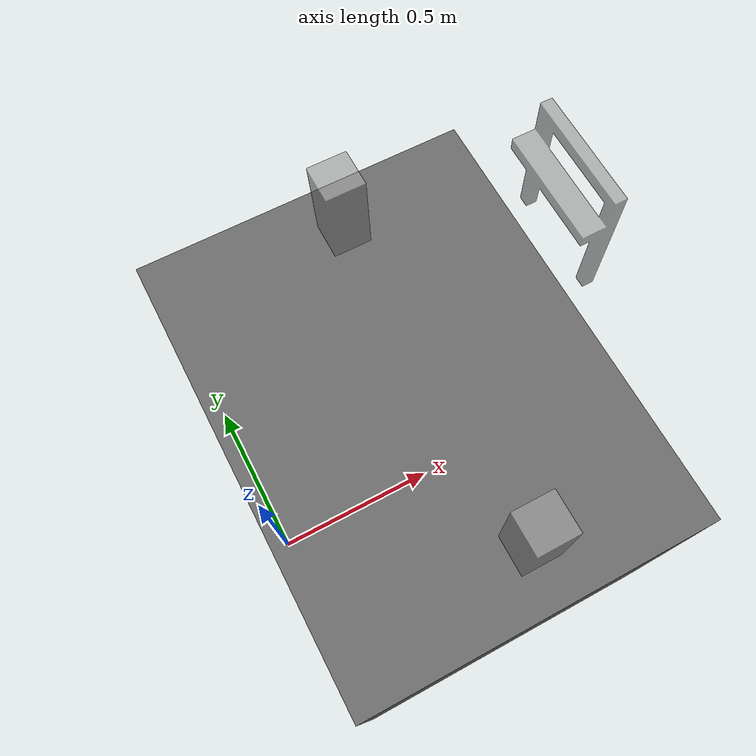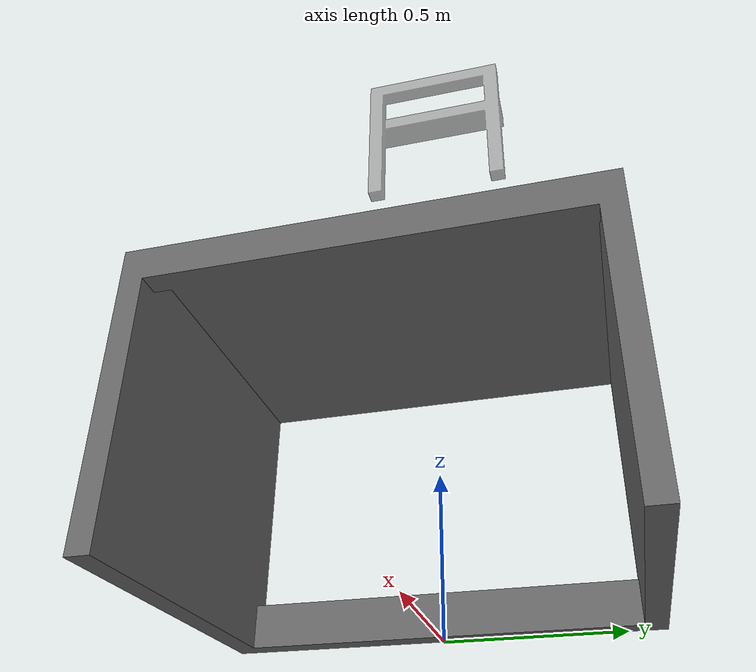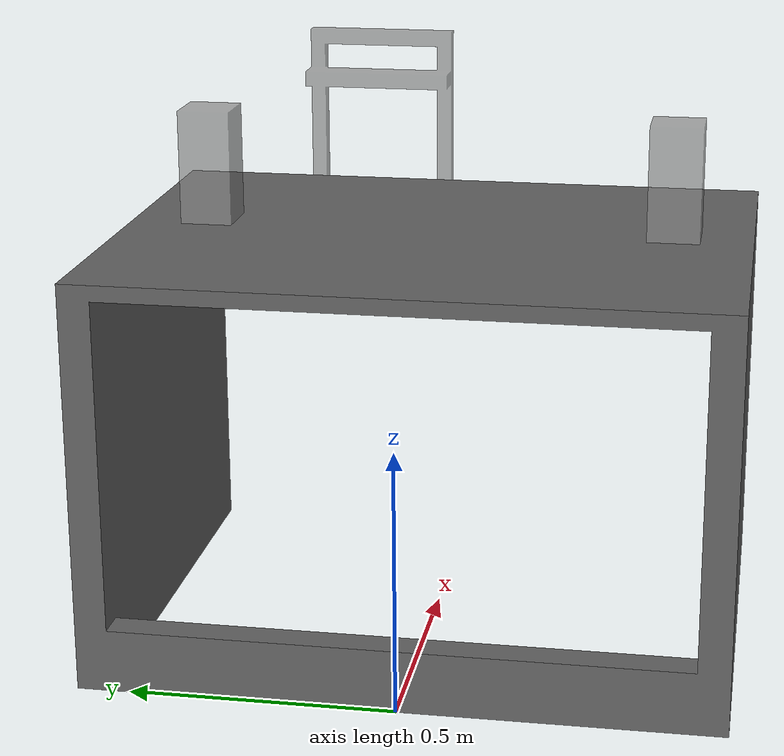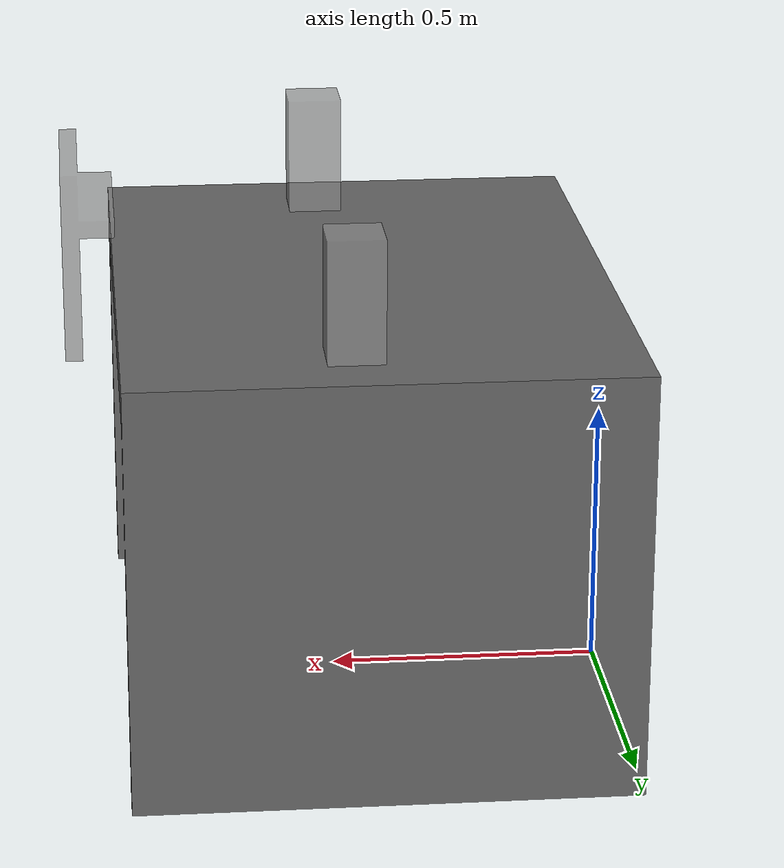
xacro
<?xml version="1.0"?>
  <!--  Author: Cristian Beltran -->

<!-- This macro adds a convenient TF frame at the tip of the closed gripper. -->
<!-- The position of the TF frame has not been measured at all and needs to be calibrated. -->

<robot name="ur3e_dual_workspace"
  xmlns:xacro="http://www.ros.org/wiki/xacro">

  <link name="workspace_table">
    <visual>
      <geometry>
        <mesh filename="package://ur3e_dual_description/meshes/ur3e_table.stl" />
      </geometry>
      <material name="dark_gray">
        <color rgba="${100/255} ${100/255} ${100/255} 1.0"/>
      </material>
    </visual>
    <collision>
      <geometry>
        <mesh filename="package://ur3e_dual_description/meshes/ur3e_table.stl" />
      </geometry>
    </collision>
    <inertial>
      <origin xyz="0.401616 -0.000430 0.525458" rpy="0 0 0" />
      <mass value="10.0" />
      <inertia ixx="0.054454" ixy="-0.000007" ixz="0.005301" iyy="0.034120" iyz="0.000009" izz="0.046806"/>
    </inertial>
  </link>
  <link name="workspace_tool_holder">
    <visual>
      <geometry>
        <mesh filename="package://ur3e_dual_description/meshes/simple_tool_support.stl" />
      </geometry>
      <material name="transparent">
        <color rgba="${150/255} ${150/255} ${150/255} 0.7"/>
      </material>
    </visual>
    <collision>
      <geometry>
        <mesh filename="package://ur3e_dual_description/meshes/simple_tool_support.stl" />
      </geometry>
    </collision>
    <inertial>
      <origin xyz="0.401616 -0.000430 0.525458" rpy="0 0 0" />
      <mass value="10.0" />
      <inertia ixx="0.054454" ixy="-0.000007" ixz="0.005301" iyy="0.034120" iyz="0.000009" izz="0.046806"/>
    </inertial>
  </link>

  <link name="rightarm_support">
    <visual>
      <origin xyz="0.0 0.0 0.11" rpy="0 0 0"/>
      <geometry>
        <box size="0.1 0.1 0.22"/>
      </geometry>
      <material name="transparent">
        <color rgba="${150/255} ${150/255} ${150/255} 0.7"/>
      </material>
    </visual>
    <collision>
      <origin xyz="0.0 0.0 0.11" rpy="0 0 0"/>
      <geometry>
        <box size="0.1 0.1 0.22"/>
      </geometry>
    </collision>
    <inertial>
      <mass value="2.0" />
      <origin xyz="0.0 0.0 0.0" />
      <inertia ixx = "1.0" ixy = "0.000000" ixz = "0.000000"
             iyx = "0.000000" iyy = "1.0" iyz = "0.000000"
             izx = "0.000000" izy = "0.000000" izz = "1.0" />
    </inertial>
  </link>

  <link name="leftarm_support">
    <visual>
      <origin xyz="0.0 0.0 0.11" rpy="0 0 0"/>
      <geometry>
        <box size="0.1 0.1 0.22"/>
      </geometry>
      <material name="transparent">
        <color rgba="${150/255} ${150/255} ${150/255} 0.7"/>
      </material>
    </visual>
    <collision>
      <origin xyz="0.0 0.0 0.11" rpy="0 0 0"/>
      <geometry>
        <box size="0.1 0.1 0.22"/>
      </geometry>
    </collision>
    <inertial>
      <mass value="2.0" />
      <origin xyz="0.0 0.0 0.0" />
      <inertia ixx = "1.0" ixy = "0.000000" ixz = "0.000000"
             iyx = "0.000000" iyy = "1.0" iyz = "0.000000"
             izx = "0.000000" izy = "0.000000" izz = "1.0" />
    </inertial>
  </link>

  <joint name="workspace_table_rightarm_support_joint" type="fixed">
    <parent link="workspace_table" />
    <child link="rightarm_support" />
    <origin xyz="0.50 -0.45 0.78" rpy="0.0 0.0 0.0" />
  </joint>

  <joint name="workspace_table_leftarm_support_joint" type="fixed">
    <parent link="workspace_table" />
    <child link="leftarm_support" />
    <origin xyz="0.50 0.45 0.78" rpy="0.0 0.0 0.0" />
  </joint>

  <joint name="workspace_table_tool_holder_joint" type="fixed">
    <parent link="workspace_table" />
    <child link="workspace_tool_holder" />
    <origin xyz="0.96 0.20 0.75" rpy="1.5707 0.0 3.1415" />
  </joint>

  <gazebo reference="workspace_body">
    <mu1>0.9</mu1>
    <mu2>0.9</mu2>
    <material>Gazebo/GreyTransparent</material>
  </gazebo>
  <gazebo reference="workspace_table">
    <mu1>0.9</mu1>
    <mu2>0.9</mu2>
    <material>Gazebo/DarkGrey</material>
  </gazebo>
  <gazebo reference="workspace_tool_holder">
    <mu1>0.9</mu1>
    <mu2>0.9</mu2>
    <material>Gazebo/GreyTransparent</material>
  </gazebo>
</robot>
